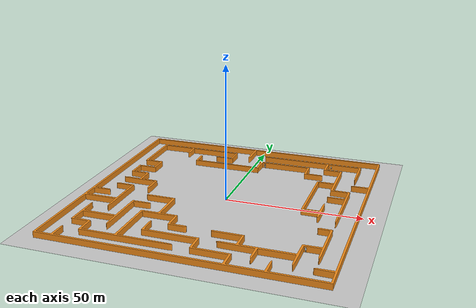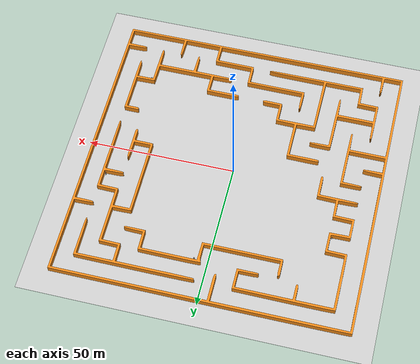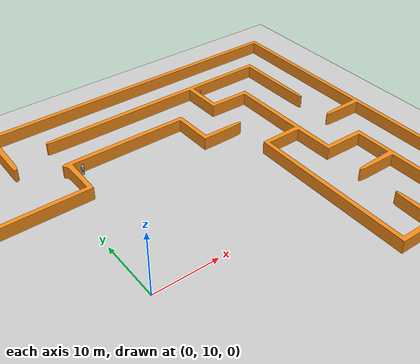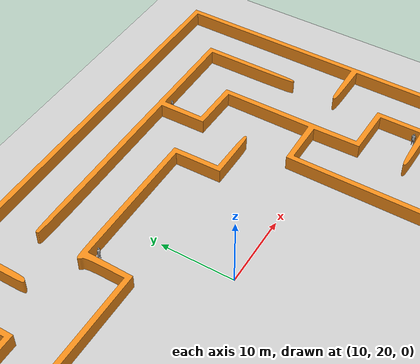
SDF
<sdf version="1.6">
 <world name="default">
  <light name="sun" type="directional">
   <pose>0 0 10 0 -0 0</pose>
   <diffuse>0.8 0.8 0.8 1</diffuse>
   <specular>0.2 0.2 0.2 1</specular>
   <attenuation>
    <range>1000</range>
    <constant>0.9</constant>
    <linear>0.01</linear>
    <quadratic>0.001</quadratic>
   </attenuation>
   <direction>-0.5 0.1 -0.9</direction>
  </light>
  <model name="ground_plane">
   <static>1</static>
   <link name="link">
    <collision name="collision">
     <geometry><plane><normal>0 0 1</normal><size>100 100</size></plane></geometry>
     <surface><friction><ode><mu>100</mu><mu2>50</mu2></ode></friction></surface>
    </collision>
    <visual name="visual">
     <cast_shadows>0</cast_shadows>
     <geometry><plane><normal>0 0 1</normal><size>100 100</size></plane></geometry>
     <material>
      <script><uri>file://media/materials/scripts/gazebo.material</uri><name>Gazebo/Grey</name></script>
     </material>
    </visual>
   </link>
  </model>
  <gravity>0 0 -9.8</gravity>
  <magnetic_field>6e-06 2.3e-05 -4.2e-05</magnetic_field>
  <atmosphere type="adiabatic"/>
  <physics name="default_physics" default="0" type="ode">
   <max_step_size>0.001</max_step_size>
   <real_time_factor>1</real_time_factor>
   <real_time_update_rate>1000</real_time_update_rate>
  </physics>
  <scene><ambient>0.4 0.4 0.4 1</ambient><background>0.7 0.7 0.7 1</background><shadows>1</shadows></scene>
  <spherical_coordinates>
   <surface_model>EARTH_WGS84</surface_model>
   <latitude_deg>0</latitude_deg>
   <longitude_deg>0</longitude_deg>
   <elevation>0</elevation>
   <heading_deg>0</heading_deg>
  </spherical_coordinates>
  <model name="rcap_outdoor1">
   <static>1</static>
   <pose>-52.2676 52.3393 0 0 -0 0</pose>
   <link name="link">
    <collision name="collision">
     <geometry><mesh><uri>model://rcap_outdoor1/rcap_outdoor1.stl</uri><scale>576 576 100</scale></mesh></geometry>
    </collision>
    <visual name="visual">
     <geometry><mesh><uri>model://rcap_outdoor1/rcap_outdoor1.stl</uri><scale>576 576 100</scale></mesh></geometry>
     <cast_shadows>0</cast_shadows>
     <material>
      <script><uri>file://media/materials/scripts/gazebo.material</uri><name>Gazebo/Orange</name></script>
     </material>
    </visual>
   </link>
  </model>
  <model name="victimWoman">
   <static>1</static>
   <pose>-36.8149 17.3982 0 1.57139 -0.000531 -2.41089</pose>
   <link name="defaultModel_0::custom_0">
    <visual name="custom_0_visual">
     <geometry>
      <mesh><uri>model://victimWoman/girl-brunette-dae/girl-brunette.dae</uri><scale>1 1 1</scale></mesh>
     </geometry>
    </visual>
    <collision name="custom_0_collision">
     <geometry>
      <mesh><uri>model://victimWoman/girl-brunette-dae/girl-brunette.dae</uri><scale>1 1 1</scale></mesh>
     </geometry>
    </collision>
    <audio_source>
     <uri>file://media/audio/HelpMe.wav</uri>
     <pitch>1</pitch>
     <gain>0.5</gain>
     <loop>1</loop>
    </audio_source>
   </link>
  </model>
  <model name="person_standing">
   <link name="link">
    <inertial>
     <pose>0 -0.1 0.95 0 -0 0</pose>
     <mass>80</mass>
     <inertia><ixx>24.88</ixx><ixy>0</ixy><ixz>0</ixz><iyy>25.73</iyy><iyz>0</iyz><izz>2.48</izz></inertia>
    </inertial>
    <collision name="bottom">
     <pose>0 -0.1 0.01 0 -0 0</pose>
     <geometry><box><size>0.5 0.35 0.02</size></box></geometry>
    </collision>
    <collision name="person">
     <pose>0 0 0.02 0.04 -0 0</pose>
     <geometry><mesh><uri>model://person_standing/meshes/standing.dae</uri></mesh></geometry>
    </collision>
    <visual name="visual">
     <pose>0 0 0.02 0.04 -0 0</pose>
     <geometry><mesh><uri>model://person_standing/meshes/standing.dae</uri></mesh></geometry>
    </visual>
   </link>
   <pose>4.59598 35.1734 -1e-06 -1e-06 -1e-06 0.000146</pose>
  </model>
  <model name="victimWoman_0">
   <static>1</static>
   <pose>30.5785 41.8148 0 1.57 -0 0</pose>
   <link name="defaultModel_0::custom_0">
    <visual name="custom_0_visual">
     <geometry>
      <mesh><uri>model://victimWoman/girl-brunette-dae/girl-brunette.dae</uri><scale>1 1 1</scale></mesh>
     </geometry>
    </visual>
    <collision name="custom_0_collision">
     <geometry>
      <mesh><uri>model://victimWoman/girl-brunette-dae/girl-brunette.dae</uri><scale>1 1 1</scale></mesh>
     </geometry>
    </collision>
    <audio_source>
     <uri>file://media/audio/HelpMe.wav</uri>
     <pitch>1</pitch>
     <gain>0.5</gain>
     <loop>1</loop>
    </audio_source>
   </link>
  </model>
  <model name="person_standing_0">
   <link name="link">
    <inertial>
     <pose>0 -0.1 0.95 0 -0 0</pose>
     <mass>80</mass>
     <inertia><ixx>24.88</ixx><ixy>0</ixy><ixz>0</ixz><iyy>25.73</iyy><iyz>0</iyz><izz>2.48</izz></inertia>
    </inertial>
    <collision name="bottom">
     <pose>0 -0.1 0.01 0 -0 0</pose>
     <geometry><box><size>0.5 0.35 0.02</size></box></geometry>
    </collision>
    <collision name="person">
     <pose>0 0 0.02 0.04 -0 0</pose>
     <geometry><mesh><uri>model://person_standing/meshes/standing.dae</uri></mesh></geometry>
    </collision>
    <visual name="visual">
     <pose>0 0 0.02 0.04 -0 0</pose>
     <geometry><mesh><uri>model://person_standing/meshes/standing.dae</uri></mesh></geometry>
    </visual>
   </link>
   <pose>41.1866 11.1294 0 -0 -1e-06 -1.58328</pose>
  </model>
  <model name="person_standing_1">
   <link name="link">
    <inertial>
     <pose>0 -0.1 0.95 0 -0 0</pose>
     <mass>80</mass>
     <inertia><ixx>24.88</ixx><ixy>0</ixy><ixz>0</ixz><iyy>25.73</iyy><iyz>0</iyz><izz>2.48</izz></inertia>
    </inertial>
    <collision name="bottom">
     <pose>0 -0.1 0.01 0 -0 0</pose>
     <geometry><box><size>0.5 0.35 0.02</size></box></geometry>
    </collision>
    <collision name="person">
     <pose>0 0 0.02 0.04 -0 0</pose>
     <geometry><mesh><uri>model://person_standing/meshes/standing.dae</uri></mesh></geometry>
    </collision>
    <visual name="visual">
     <pose>0 0 0.02 0.04 -0 0</pose>
     <geometry><mesh><uri>model://person_standing/meshes/standing.dae</uri></mesh></geometry>
    </visual>
   </link>
   <pose>36.564 -29.6559 -1e-06 -1e-06 2e-06 -0.000131</pose>
  </model>
 </world>
</sdf>
